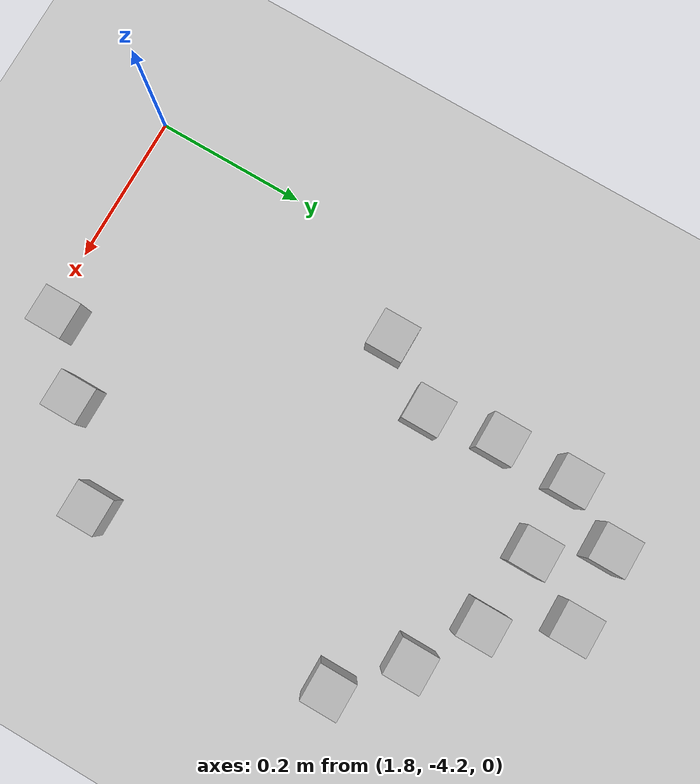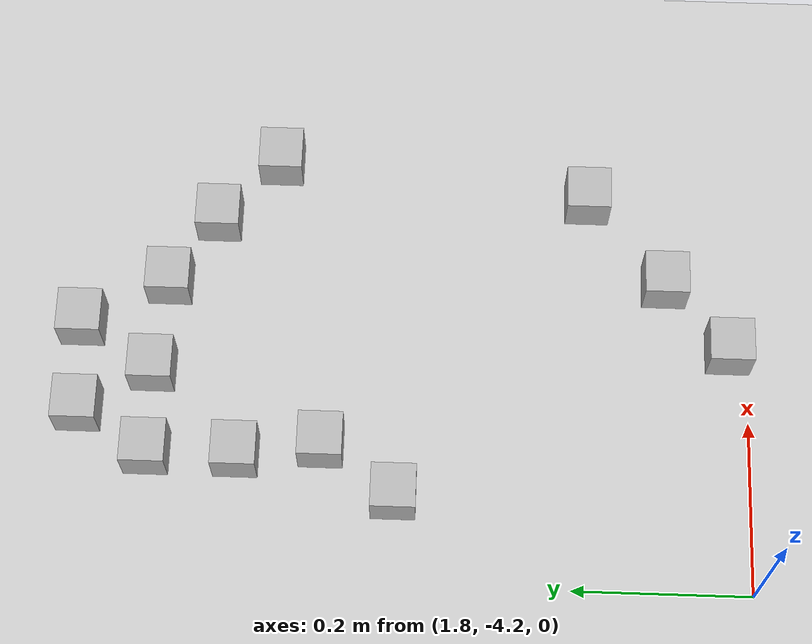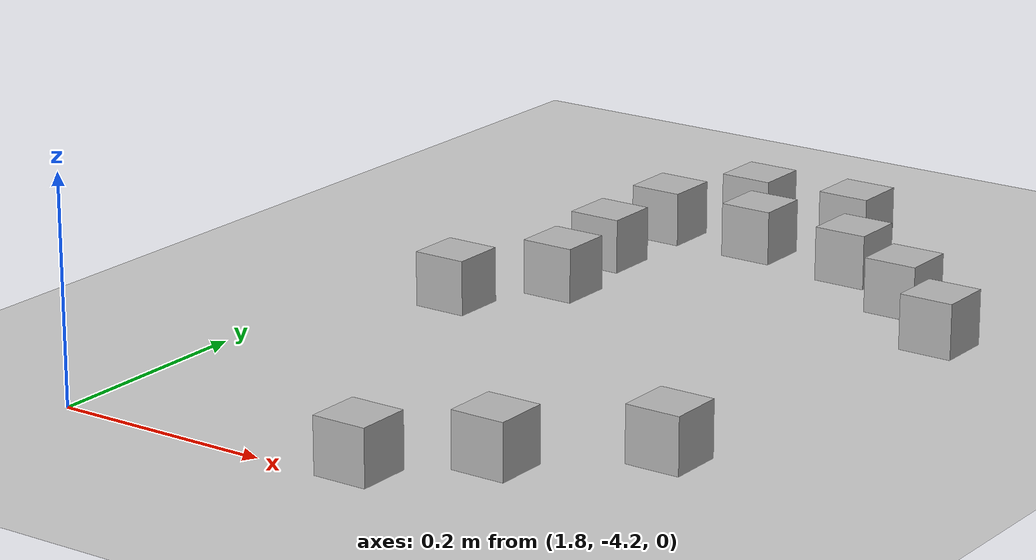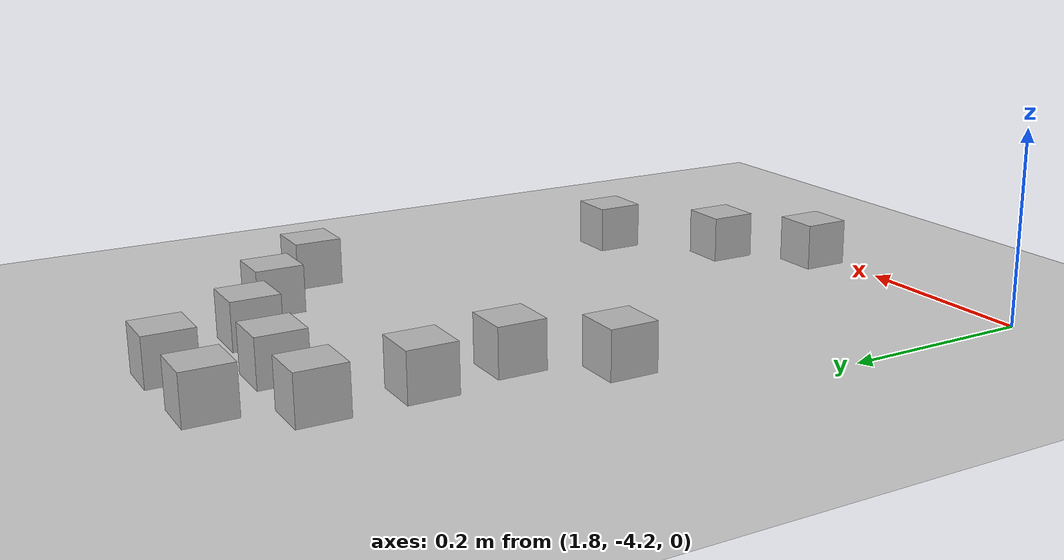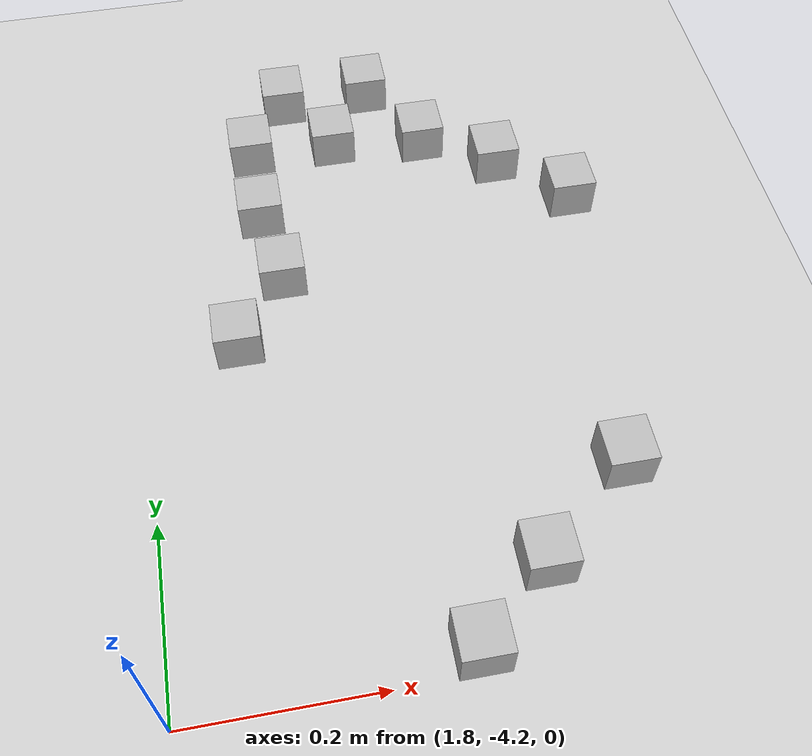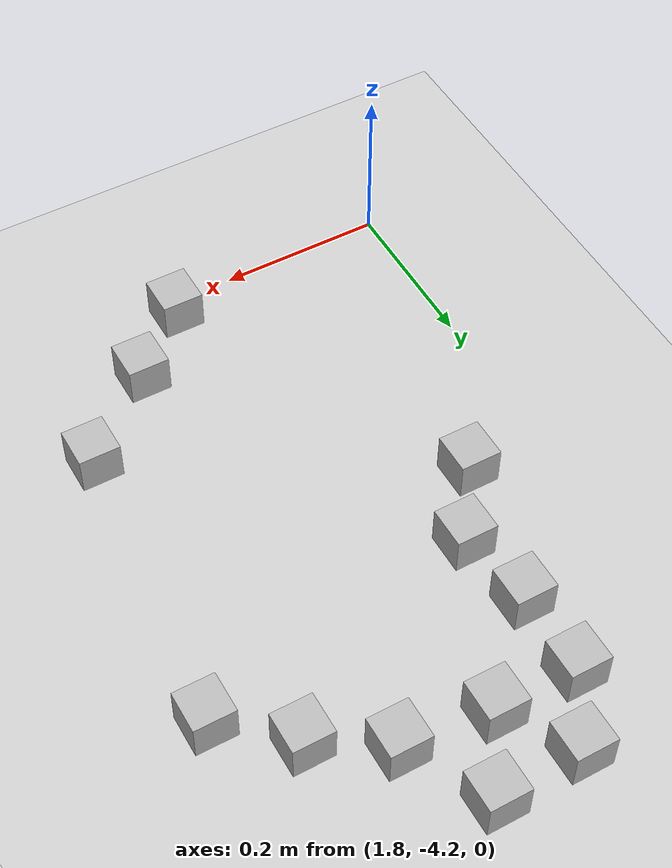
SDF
<sdf version="1.4">
 <world name="default">
  <model name="ground_plane">
   <static>1</static>
   <link name="link">
    <collision name="collision">
     <geometry><plane><normal>0 0 1</normal><size>100 100</size></plane></geometry>
     <surface><friction><ode><mu>100</mu><mu2>50</mu2></ode></friction></surface>
    </collision>
    <visual name="visual">
     <cast_shadows>0</cast_shadows>
     <geometry><plane><normal>0 0 1</normal><size>100 100</size></plane></geometry>
     <material>
      <script><uri>file://media/materials/scripts/gazebo.material</uri><name>Gazebo/Grey</name></script>
     </material>
    </visual>
    <velocity_decay><linear>0</linear><angular>0</angular></velocity_decay>
   </link>
  </model>
  <model name="at37">
   <static>0</static>
   <link name="link">
    <inertial>
     <mass>0.01</mass>
     <inertia><ixx>4e-05</ixx><ixy>0</ixy><ixz>0</ixz><iyy>4e-05</iyy><iyz>0</iyz><izz>4e-05</izz></inertia>
    </inertial>
    <visual name="visual">
     <geometry><box><size>0.05 0.05 0.05</size></box></geometry>
     <material>
      <script>
       <uri>model://at0/materials/scripts</uri>
       <uri>model://at0/materials/textures</uri>
       <name>at0/Diffuse</name>
      </script>
     </material>
    </visual>
    <collision name="collision">
     <geometry><box><size>0.05 0.05 0.05</size></box></geometry>
     <surface><friction><ode><mu>0.8</mu><mu2>0.7</mu2></ode></friction></surface>
    </collision>
    <velocity_decay><linear>0</linear><angular>0</angular></velocity_decay>
   </link>
   <pose>2.08381 -4.17769 0.025 0 -0 0</pose>
  </model>
  <model name="at96">
   <static>0</static>
   <link name="link">
    <inertial>
     <mass>0.01</mass>
     <inertia><ixx>4e-05</ixx><ixy>0</ixy><ixz>0</ixz><iyy>4e-05</iyy><iyz>0</iyz><izz>4e-05</izz></inertia>
    </inertial>
    <visual name="visual">
     <geometry><box><size>0.05 0.05 0.05</size></box></geometry>
     <material>
      <script>
       <uri>model://at0/materials/scripts</uri>
       <uri>model://at0/materials/textures</uri>
       <name>at0/Diffuse</name>
      </script>
     </material>
    </visual>
    <collision name="collision">
     <geometry><box><size>0.05 0.05 0.05</size></box></geometry>
     <surface><friction><ode><mu>0.8</mu><mu2>0.7</mu2></ode></friction></surface>
    </collision>
    <velocity_decay><linear>0</linear><angular>0</angular></velocity_decay>
   </link>
   <pose>2.26655 -4.0172 0.025 0 -0 0</pose>
  </model>
  <model name="at100">
   <static>0</static>
   <link name="link">
    <inertial>
     <mass>0.01</mass>
     <inertia><ixx>4e-05</ixx><ixy>0</ixy><ixz>0</ixz><iyy>4e-05</iyy><iyz>0</iyz><izz>4e-05</izz></inertia>
    </inertial>
    <visual name="visual">
     <geometry><box><size>0.05 0.05 0.05</size></box></geometry>
     <material>
      <script>
       <uri>model://at0/materials/scripts</uri>
       <uri>model://at0/materials/textures</uri>
       <name>at0/Diffuse</name>
      </script>
     </material>
    </visual>
    <collision name="collision">
     <geometry><box><size>0.05 0.05 0.05</size></box></geometry>
     <surface><friction><ode><mu>0.8</mu><mu2>0.7</mu2></ode></friction></surface>
    </collision>
    <velocity_decay><linear>0</linear><angular>0</angular></velocity_decay>
   </link>
   <pose>2.30568 -3.6587 0.025 0 -0 0</pose>
  </model>
  <model name="at101">
   <static>0</static>
   <link name="link">
    <inertial>
     <mass>0.01</mass>
     <inertia><ixx>4e-05</ixx><ixy>0</ixy><ixz>0</ixz><iyy>4e-05</iyy><iyz>0</iyz><izz>4e-05</izz></inertia>
    </inertial>
    <visual name="visual">
     <geometry><box><size>0.05 0.05 0.05</size></box></geometry>
     <material>
      <script>
       <uri>model://at0/materials/scripts</uri>
       <uri>model://at0/materials/textures</uri>
       <name>at0/Diffuse</name>
      </script>
     </material>
    </visual>
    <collision name="collision">
     <geometry><box><size>0.05 0.05 0.05</size></box></geometry>
     <surface><friction><ode><mu>0.8</mu><mu2>0.7</mu2></ode></friction></surface>
    </collision>
    <velocity_decay><linear>0</linear><angular>0</angular></velocity_decay>
   </link>
   <pose>2.23086 -3.59002 0.025 0 -0 0</pose>
  </model>
  <model name="at102">
   <static>0</static>
   <link name="link">
    <inertial>
     <mass>0.01</mass>
     <inertia><ixx>4e-05</ixx><ixy>0</ixy><ixz>0</ixz><iyy>4e-05</iyy><iyz>0</iyz><izz>4e-05</izz></inertia>
    </inertial>
    <visual name="visual">
     <geometry><box><size>0.05 0.05 0.05</size></box></geometry>
     <material>
      <script>
       <uri>model://at0/materials/scripts</uri>
       <uri>model://at0/materials/textures</uri>
       <name>at0/Diffuse</name>
      </script>
     </material>
    </visual>
    <collision name="collision">
     <geometry><box><size>0.05 0.05 0.05</size></box></geometry>
     <surface><friction><ode><mu>0.8</mu><mu2>0.7</mu2></ode></friction></surface>
    </collision>
    <velocity_decay><linear>0</linear><angular>0</angular></velocity_decay>
   </link>
   <pose>2.14936 -3.53821 0.025 0 -0 0</pose>
  </model>
  <model name="at103">
   <static>0</static>
   <link name="link">
    <inertial>
     <mass>0.01</mass>
     <inertia><ixx>4e-05</ixx><ixy>0</ixy><ixz>0</ixz><iyy>4e-05</iyy><iyz>0</iyz><izz>4e-05</izz></inertia>
    </inertial>
    <visual name="visual">
     <geometry><box><size>0.05 0.05 0.05</size></box></geometry>
     <material>
      <script>
       <uri>model://at0/materials/scripts</uri>
       <uri>model://at0/materials/textures</uri>
       <name>at0/Diffuse</name>
      </script>
     </material>
    </visual>
    <collision name="collision">
     <geometry><box><size>0.05 0.05 0.05</size></box></geometry>
     <surface><friction><ode><mu>0.8</mu><mu2>0.7</mu2></ode></friction></surface>
    </collision>
    <velocity_decay><linear>0</linear><angular>0</angular></velocity_decay>
   </link>
   <pose>2.04215 -3.52623 0.025 0 -0 0</pose>
  </model>
  <model name="at109">
   <static>0</static>
   <link name="link">
    <inertial>
     <mass>0.01</mass>
     <inertia><ixx>4e-05</ixx><ixy>0</ixy><ixz>0</ixz><iyy>4e-05</iyy><iyz>0</iyz><izz>4e-05</izz></inertia>
    </inertial>
    <visual name="visual">
     <geometry><box><size>0.05 0.05 0.05</size></box></geometry>
     <material>
      <script>
       <uri>model://at0/materials/scripts</uri>
       <uri>model://at0/materials/textures</uri>
       <name>at0/Diffuse</name>
      </script>
     </material>
    </visual>
    <collision name="collision">
     <geometry><box><size>0.05 0.05 0.05</size></box></geometry>
     <surface><friction><ode><mu>0.8</mu><mu2>0.7</mu2></ode></friction></surface>
    </collision>
    <velocity_decay><linear>0</linear><angular>0</angular></velocity_decay>
   </link>
   <pose>1.90017 -3.80346 0.025 0 -0 0</pose>
  </model>
  <model name="at110">
   <static>0</static>
   <link name="link">
    <inertial>
     <mass>0.01</mass>
     <inertia><ixx>4e-05</ixx><ixy>0</ixy><ixz>0</ixz><iyy>4e-05</iyy><iyz>0</iyz><izz>4e-05</izz></inertia>
    </inertial>
    <visual name="visual">
     <geometry><box><size>0.05 0.05 0.05</size></box></geometry>
     <material>
      <script>
       <uri>model://at0/materials/scripts</uri>
       <uri>model://at0/materials/textures</uri>
       <name>at0/Diffuse</name>
      </script>
     </material>
    </visual>
    <collision name="collision">
     <geometry><box><size>0.05 0.05 0.05</size></box></geometry>
     <surface><friction><ode><mu>0.8</mu><mu2>0.7</mu2></ode></friction></surface>
    </collision>
    <velocity_decay><linear>0</linear><angular>0</angular></velocity_decay>
   </link>
   <pose>1.95741 -3.72062 0.025 0 -0 0</pose>
  </model>
  <model name="at111">
   <static>0</static>
   <link name="link">
    <inertial>
     <mass>0.01</mass>
     <inertia><ixx>4e-05</ixx><ixy>0</ixy><ixz>0</ixz><iyy>4e-05</iyy><iyz>0</iyz><izz>4e-05</izz></inertia>
    </inertial>
    <visual name="visual">
     <geometry><box><size>0.05 0.05 0.05</size></box></geometry>
     <material>
      <script>
       <uri>model://at0/materials/scripts</uri>
       <uri>model://at0/materials/textures</uri>
       <name>at0/Diffuse</name>
      </script>
     </material>
    </visual>
    <collision name="collision">
     <geometry><box><size>0.05 0.05 0.05</size></box></geometry>
     <surface><friction><ode><mu>0.8</mu><mu2>0.7</mu2></ode></friction></surface>
    </collision>
    <velocity_decay><linear>0</linear><angular>0</angular></velocity_decay>
   </link>
   <pose>1.94324 -3.62605 0.025 0 -0 0</pose>
  </model>
  <model name="at119">
   <static>0</static>
   <link name="link">
    <inertial>
     <mass>0.01</mass>
     <inertia><ixx>4e-05</ixx><ixy>0</ixy><ixz>0</ixz><iyy>4e-05</iyy><iyz>0</iyz><izz>4e-05</izz></inertia>
    </inertial>
    <visual name="visual">
     <geometry><box><size>0.05 0.05 0.05</size></box></geometry>
     <material>
      <script>
       <uri>model://at0/materials/scripts</uri>
       <uri>model://at0/materials/textures</uri>
       <name>at0/Diffuse</name>
      </script>
     </material>
    </visual>
    <collision name="collision">
     <geometry><box><size>0.05 0.05 0.05</size></box></geometry>
     <surface><friction><ode><mu>0.8</mu><mu2>0.7</mu2></ode></friction></surface>
    </collision>
    <velocity_decay><linear>0</linear><angular>0</angular></velocity_decay>
   </link>
   <pose>1.94324 -3.52605 0.025 0 -0 0</pose>
  </model>
  <model name="at127">
   <static>0</static>
   <link name="link">
    <inertial>
     <mass>0.01</mass>
     <inertia><ixx>4e-05</ixx><ixy>0</ixy><ixz>0</ixz><iyy>4e-05</iyy><iyz>0</iyz><izz>4e-05</izz></inertia>
    </inertial>
    <visual name="visual">
     <geometry><box><size>0.05 0.05 0.05</size></box></geometry>
     <material>
      <script>
       <uri>model://at0/materials/scripts</uri>
       <uri>model://at0/materials/textures</uri>
       <name>at0/Diffuse</name>
      </script>
     </material>
    </visual>
    <collision name="collision">
     <geometry><box><size>0.05 0.05 0.05</size></box></geometry>
     <surface><friction><ode><mu>0.8</mu><mu2>0.7</mu2></ode></friction></surface>
    </collision>
    <velocity_decay><linear>0</linear><angular>0</angular></velocity_decay>
   </link>
   <pose>1.99159 -3.44584 0.025 0 -0 0</pose>
  </model>
  <model name="at128">
   <static>0</static>
   <link name="link">
    <inertial>
     <mass>0.01</mass>
     <inertia><ixx>4e-05</ixx><ixy>0</ixy><ixz>0</ixz><iyy>4e-05</iyy><iyz>0</iyz><izz>4e-05</izz></inertia>
    </inertial>
    <visual name="visual">
     <geometry><box><size>0.05 0.05 0.05</size></box></geometry>
     <material>
      <script>
       <uri>model://at0/materials/scripts</uri>
       <uri>model://at0/materials/textures</uri>
       <name>at0/Diffuse</name>
      </script>
     </material>
    </visual>
    <collision name="collision">
     <geometry><box><size>0.05 0.05 0.05</size></box></geometry>
     <surface><friction><ode><mu>0.8</mu><mu2>0.7</mu2></ode></friction></surface>
    </collision>
    <velocity_decay><linear>0</linear><angular>0</angular></velocity_decay>
   </link>
   <pose>2.09526 -3.44208 0.025 0 -0 0</pose>
  </model>
  <model name="at226">
   <static>0</static>
   <link name="link">
    <inertial>
     <mass>0.01</mass>
     <inertia><ixx>4e-05</ixx><ixy>0</ixy><ixz>0</ixz><iyy>4e-05</iyy><iyz>0</iyz><izz>4e-05</izz></inertia>
    </inertial>
    <visual name="visual">
     <geometry><box><size>0.05 0.05 0.05</size></box></geometry>
     <material>
      <script>
       <uri>model://at0/materials/scripts</uri>
       <uri>model://at0/materials/textures</uri>
       <name>at0/Diffuse</name>
      </script>
     </material>
    </visual>
    <collision name="collision">
     <geometry><box><size>0.05 0.05 0.05</size></box></geometry>
     <surface><friction><ode><mu>0.8</mu><mu2>0.7</mu2></ode></friction></surface>
    </collision>
    <velocity_decay><linear>0</linear><angular>0</angular></velocity_decay>
   </link>
   <pose>2.1633 -4.10608 0.025 0 -0 0</pose>
  </model>
 </world>
</sdf>
